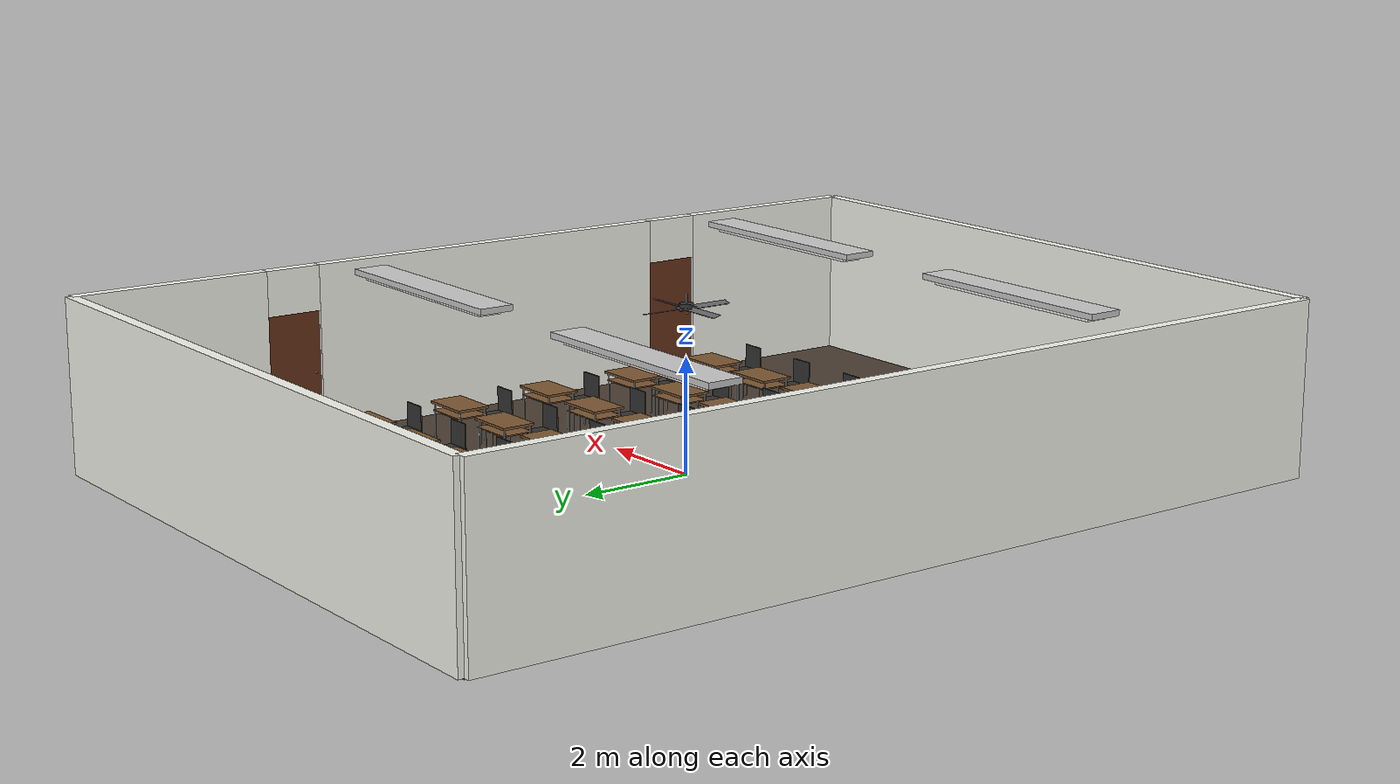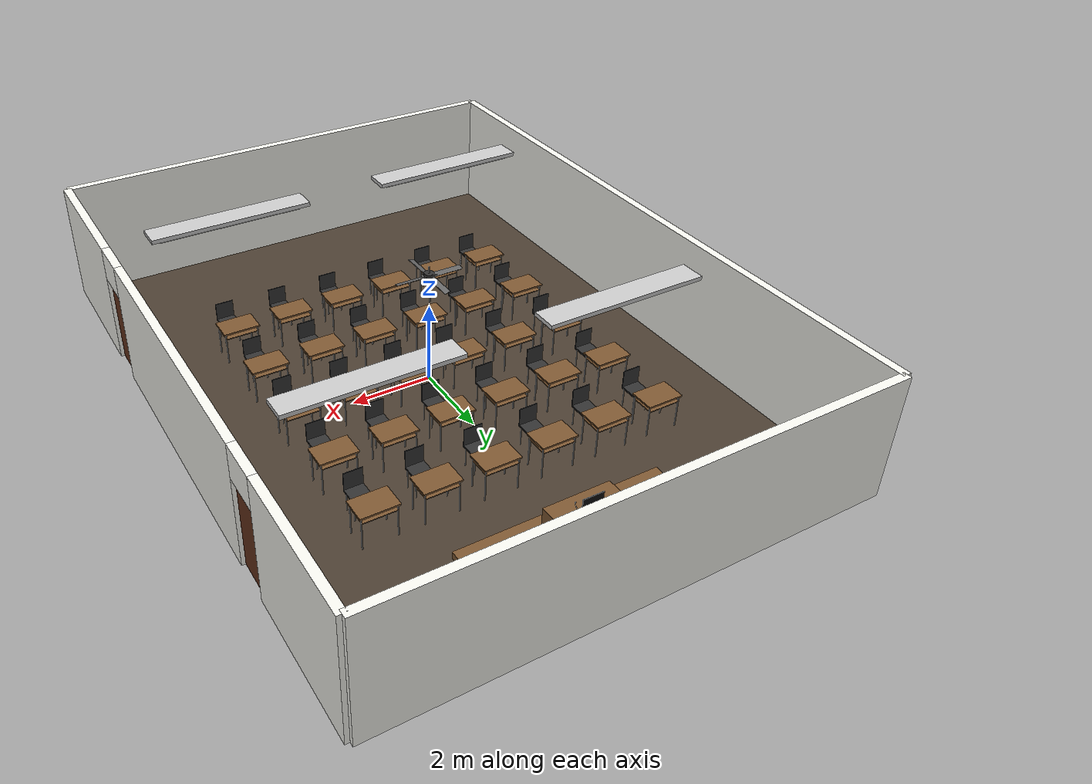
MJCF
<?xml version="1.0" ?>
<mujoco model="high_brightness_classroom">
  <compiler angle="degree" coordinate="local" inertiafromgeom="true"/>
  <asset>
    <texture name="tex_floor" type="2d" builtin="flat" rgb1="0.3 0.25 0.2" width="512" height="512"/>
    <material name="mat_floor" texture="tex_floor" texrepeat="10 10"/>
    <material name="mat_wood" rgba="0.5 0.35 0.2 1"/>
    <material name="mat_metal" rgba="0.8 0.8 0.8 1"/>
    <material name="mat_chair" rgba="0.2 0.2 0.2 1"/>
    <material name="mat_wall" rgba="0.98 0.98 0.95 1"/>
    <material name="mat_door" rgba="0.4 0.2 0.1 1"/>
    <material name="mat_blackboard" rgba="0.1 0.2 0.1 1"/>
    <material name="mat_tech" rgba="0.05 0.05 0.05 1"/>
    <material name="mat_led" rgba="1 1 1 1" emission="1"/>
  </asset>
  <worldbody>
    <body name="ceiling_fan" pos="0 0 2.8">
        <geom name="fan_rod" type="cylinder" size="0.015 0.1" pos="0 0 0.15" material="mat_metal"/>

        <geom name="fan_motor_housing" type="cylinder" size="0.12 0.05" pos="0 0 0.05" rgba="0.2 0.2 0.2 1"/>

        <body name="fan_rotating_part" pos="0 0 0.02">
            <joint name="fan_joint" type="hinge" axis="0 0 1" frictionloss="0.05" damping="0.1"/>

            <geom name="fan_hub" type="cylinder" size="0.06 0.02" material="mat_metal"/>

            <body name="blade_1" pos="0.08 0 0" euler="15 0 0">
                <geom name="blade_1_geom" type="box" size="0.5 0.07 0.005" pos="0.25 0 0" material="mat_metal" rgba="0.4 0.4 0.4 1"/>
            </body>

            <body name="blade_2" pos="-0.08 0 0" euler="-15 0 0">
                <geom name="blade_2_geom" type="box" size="0.5 0.07 0.005" pos="-0.25 0 0" material="mat_metal" rgba="0.4 0.4 0.4 1"/>
            </body>

            <body name="blade_3" pos="0 0.08 0" euler="0 15 0">
                <geom name="blade_3_geom" type="box" size="0.07 0.5 0.005" pos="0 0.25 0" material="mat_metal" rgba="0.4 0.4 0.4 1"/>
            </body>

            <body name="blade_4" pos="0 -0.08 0" euler="0 -15 0">
                <geom name="blade_4_geom" type="box" size="0.07 0.5 0.005" pos="0 -0.25 0" material="mat_metal" rgba="0.4 0.4 0.4 1"/>
            </body>
        </body>
    </body>
    <body name="light_1" pos="-3 3 3">
            <geom type="box" size="2 0.3 0.05" material="mat_metal" />
            <geom type="box" size="1.8 0.2 0.02" pos="0 0 -0.1" material="mat_led" />
            <light name="light_L1" pos="0 0 -0.5" dir="0 0 -1" diffuse="1.2 1.2 1.2"
                   cutoff="90" exponent="2" castshadow="true"/>
        </body>

        <body name="light_2" pos="3 3 3">
            <geom type="box" size="2 0.3 0.05" material="mat_metal" />
            <geom type="box" size="1.8 0.2 0.02" pos="0 0 -0.1" material="mat_led" />
            <light name="light_L2" pos="0 0 -0.5" dir="0 0 -1" diffuse="1.2 1.2 1.2"
                   cutoff="90" exponent="2" castshadow="true"/>
        </body>

        <body name="light_3" pos="3 -4.5 3">
            <geom type="box" size="2 0.3 0.05" material="mat_metal" />
            <geom type="box" size="1.8 0.2 0.02" pos="0 0 -0.1" material="mat_led" />
            <light name="light_L3" pos="0 0 -0.5" dir="0 0 -1" diffuse="1.2 1.2 1.2"
                   cutoff="90" exponent="2" castshadow="true"/>
        </body>

        <body name="light_4" pos="-3 -4.5 3">
            <geom type="box" size="2 0.3 0.05" material="mat_metal" />
            <geom type="box" size="1.8 0.2 0.02" pos="0 0 -0.1" material="mat_led" />
            <light name="light_L4" pos="0 0 -0.5" dir="0 0 -1" diffuse="1.2 1.2 1.2"
                   cutoff="90" exponent="2" castshadow="true"/>
        </body>
    <light pos="0 3 7" dir="0 0 -1" diffuse="1.2 1.2 1.2" specular="0.3 0.3 0.3"/>
    <light pos="0 -3 7" dir="0 0 -1" diffuse="1.2 1.2 1.2" specular="0.3 0.3 0.3"/>
    <geom name="floor" type="plane" size="6 8 0.1" material="mat_floor"/>
    <geom name="r_wall_front" type="box" size="0.1 1.75 1.5" pos="6 6.25 1.5" material="mat_wall"/>
    <geom name="r_wall_mid" type="box" size="0.1 3.5 1.5" pos="6 0 1.5" material="mat_wall"/>
    <geom name="r_wall_back" type="box" size="0.1 1.75 1.5" pos="6 -6.25 1.5" material="mat_wall"/>
    <geom name="r_wall_top1" type="box" size="0.1 0.5 0.4" pos="6 4.0 2.6" material="mat_wall"/>
    <geom name="r_wall_top2" type="box" size="0.1 0.5 0.4" pos="6 -4.0 2.6" material="mat_wall"/>
    <body name="door_1" pos="5.98 4.0 1.1">
      <geom type="box" size="0.03 0.495 1.1" material="mat_door"/>
      <geom type="cylinder" size="0.01 0.04" pos="-0.04 -0.4 0" quat="0.707 0 0.707 0" material="mat_metal"/>
    </body>
    <body name="door_2" pos="5.98 -4.0 1.1">
      <geom type="box" size="0.03 0.495 1.1" material="mat_door"/>
      <geom type="cylinder" size="0.01 0.04" pos="-0.04 -0.4 0" quat="0.707 0 0.707 0" material="mat_metal"/>
    </body>
    <geom name="wall_left" type="box" size="0.1 8 1.5" pos="-6 0 1.5" material="mat_wall"/>
    <geom name="wall_back" type="box" size="6 0.1 1.5" pos="0 -8 1.5" material="mat_wall"/>
    <geom name="wall_front" type="box" size="6 0.1 1.5" pos="0 8 1.5" material="mat_wall"/>
    <geom name="blackboard" type="box" size="3 0.02 0.8" pos="0 7.89 1.8" material="mat_blackboard"/>
    <geom name="podium" type="box" size="2.5 1.2 0.1" pos="0 6.5 0.05" material="mat_wood"/>
    <body pos="0 6.2 0.1">
      <geom type="box" size="0.8 0.4 0.4" pos="0 0 0.4" material="mat_wood"/>
      <geom type="box" size="0.25 0.01 0.18" pos="0 0.1 0.98" material="mat_tech"/>
      <geom type="capsule" size="0.005 0.1" pos="0.3 0 0.9" quat="0.92 0.38 0 0" material="mat_metal"/>
      <geom type="sphere" size="0.02" pos="0.3 -0.05 1.0" material="mat_tech"/>
    </body>
    <body name="student_0_0" pos="-3.5 4.0 0">
      <geom type="box" size="0.45 0.3 0.02" pos="0 0 0.82" material="mat_wood"/>
      <geom type="box" size="0.4 0.28 0.01" pos="0 0 0.68" material="mat_wood"/>
      <geom type="cylinder" size="0.015 0.4" pos="-0.4 -0.25 0.4" material="mat_metal"/>
      <geom type="cylinder" size="0.015 0.4" pos="0.4 -0.25 0.4" material="mat_metal"/>
      <geom type="cylinder" size="0.015 0.4" pos="-0.4 0.25 0.4" material="mat_metal"/>
      <geom type="cylinder" size="0.015 0.4" pos="0.4 0.25 0.4" material="mat_metal"/>
      <body pos="0 -0.7 0">
        <geom type="box" size="0.22 0.22 0.02" pos="0 0 0.52" material="mat_chair"/>
        <geom type="box" size="0.22 0.01 0.22" pos="0 -0.21 0.74" material="mat_chair"/>
        <geom type="cylinder" size="0.012 0.25" pos="-0.18 -0.18 0.25" material="mat_metal"/>
        <geom type="cylinder" size="0.012 0.25" pos="0.18 -0.18 0.25" material="mat_metal"/>
        <geom type="cylinder" size="0.012 0.25" pos="-0.18 0.18 0.25" material="mat_metal"/>
        <geom type="cylinder" size="0.012 0.25" pos="0.18 0.18 0.25" material="mat_metal"/>
      </body>
    </body>
    <body name="student_0_1" pos="-2.1 4.0 0">
      <geom type="box" size="0.45 0.3 0.02" pos="0 0 0.82" material="mat_wood"/>
      <geom type="box" size="0.4 0.28 0.01" pos="0 0 0.68" material="mat_wood"/>
      <geom type="cylinder" size="0.015 0.4" pos="-0.4 -0.25 0.4" material="mat_metal"/>
      <geom type="cylinder" size="0.015 0.4" pos="0.4 -0.25 0.4" material="mat_metal"/>
      <geom type="cylinder" size="0.015 0.4" pos="-0.4 0.25 0.4" material="mat_metal"/>
      <geom type="cylinder" size="0.015 0.4" pos="0.4 0.25 0.4" material="mat_metal"/>
      <body pos="0 -0.7 0">
        <geom type="box" size="0.22 0.22 0.02" pos="0 0 0.52" material="mat_chair"/>
        <geom type="box" size="0.22 0.01 0.22" pos="0 -0.21 0.74" material="mat_chair"/>
        <geom type="cylinder" size="0.012 0.25" pos="-0.18 -0.18 0.25" material="mat_metal"/>
        <geom type="cylinder" size="0.012 0.25" pos="0.18 -0.18 0.25" material="mat_metal"/>
        <geom type="cylinder" size="0.012 0.25" pos="-0.18 0.18 0.25" material="mat_metal"/>
        <geom type="cylinder" size="0.012 0.25" pos="0.18 0.18 0.25" material="mat_metal"/>
      </body>
    </body>
    <body name="student_0_2" pos="-0.7000000000000002 4.0 0">
      <geom type="box" size="0.45 0.3 0.02" pos="0 0 0.82" material="mat_wood"/>
      <geom type="box" size="0.4 0.28 0.01" pos="0 0 0.68" material="mat_wood"/>
      <geom type="cylinder" size="0.015 0.4" pos="-0.4 -0.25 0.4" material="mat_metal"/>
      <geom type="cylinder" size="0.015 0.4" pos="0.4 -0.25 0.4" material="mat_metal"/>
      <geom type="cylinder" size="0.015 0.4" pos="-0.4 0.25 0.4" material="mat_metal"/>
      <geom type="cylinder" size="0.015 0.4" pos="0.4 0.25 0.4" material="mat_metal"/>
      <body pos="0 -0.7 0">
        <geom type="box" size="0.22 0.22 0.02" pos="0 0 0.52" material="mat_chair"/>
        <geom type="box" size="0.22 0.01 0.22" pos="0 -0.21 0.74" material="mat_chair"/>
        <geom type="cylinder" size="0.012 0.25" pos="-0.18 -0.18 0.25" material="mat_metal"/>
        <geom type="cylinder" size="0.012 0.25" pos="0.18 -0.18 0.25" material="mat_metal"/>
        <geom type="cylinder" size="0.012 0.25" pos="-0.18 0.18 0.25" material="mat_metal"/>
        <geom type="cylinder" size="0.012 0.25" pos="0.18 0.18 0.25" material="mat_metal"/>
      </body>
    </body>
    <body name="student_0_3" pos="0.6999999999999993 4.0 0">
      <geom type="box" size="0.45 0.3 0.02" pos="0 0 0.82" material="mat_wood"/>
      <geom type="box" size="0.4 0.28 0.01" pos="0 0 0.68" material="mat_wood"/>
      <geom type="cylinder" size="0.015 0.4" pos="-0.4 -0.25 0.4" material="mat_metal"/>
      <geom type="cylinder" size="0.015 0.4" pos="0.4 -0.25 0.4" material="mat_metal"/>
      <geom type="cylinder" size="0.015 0.4" pos="-0.4 0.25 0.4" material="mat_metal"/>
      <geom type="cylinder" size="0.015 0.4" pos="0.4 0.25 0.4" material="mat_metal"/>
      <body pos="0 -0.7 0">
        <geom type="box" size="0.22 0.22 0.02" pos="0 0 0.52" material="mat_chair"/>
        <geom type="box" size="0.22 0.01 0.22" pos="0 -0.21 0.74" material="mat_chair"/>
        <geom type="cylinder" size="0.012 0.25" pos="-0.18 -0.18 0.25" material="mat_metal"/>
        <geom type="cylinder" size="0.012 0.25" pos="0.18 -0.18 0.25" material="mat_metal"/>
        <geom type="cylinder" size="0.012 0.25" pos="-0.18 0.18 0.25" material="mat_metal"/>
        <geom type="cylinder" size="0.012 0.25" pos="0.18 0.18 0.25" material="mat_metal"/>
      </body>
    </body>
    <body name="student_0_4" pos="2.0999999999999996 4.0 0">
      <geom type="box" size="0.45 0.3 0.02" pos="0 0 0.82" material="mat_wood"/>
      <geom type="box" size="0.4 0.28 0.01" pos="0 0 0.68" material="mat_wood"/>
      <geom type="cylinder" size="0.015 0.4" pos="-0.4 -0.25 0.4" material="mat_metal"/>
      <geom type="cylinder" size="0.015 0.4" pos="0.4 -0.25 0.4" material="mat_metal"/>
      <geom type="cylinder" size="0.015 0.4" pos="-0.4 0.25 0.4" material="mat_metal"/>
      <geom type="cylinder" size="0.015 0.4" pos="0.4 0.25 0.4" material="mat_metal"/>
      <body pos="0 -0.7 0">
        <geom type="box" size="0.22 0.22 0.02" pos="0 0 0.52" material="mat_chair"/>
        <geom type="box" size="0.22 0.01 0.22" pos="0 -0.21 0.74" material="mat_chair"/>
        <geom type="cylinder" size="0.012 0.25" pos="-0.18 -0.18 0.25" material="mat_metal"/>
        <geom type="cylinder" size="0.012 0.25" pos="0.18 -0.18 0.25" material="mat_metal"/>
        <geom type="cylinder" size="0.012 0.25" pos="-0.18 0.18 0.25" material="mat_metal"/>
        <geom type="cylinder" size="0.012 0.25" pos="0.18 0.18 0.25" material="mat_metal"/>
      </body>
    </body>
    <body name="student_0_5" pos="3.5 4.0 0">
      <geom type="box" size="0.45 0.3 0.02" pos="0 0 0.82" material="mat_wood"/>
      <geom type="box" size="0.4 0.28 0.01" pos="0 0 0.68" material="mat_wood"/>
      <geom type="cylinder" size="0.015 0.4" pos="-0.4 -0.25 0.4" material="mat_metal"/>
      <geom type="cylinder" size="0.015 0.4" pos="0.4 -0.25 0.4" material="mat_metal"/>
      <geom type="cylinder" size="0.015 0.4" pos="-0.4 0.25 0.4" material="mat_metal"/>
      <geom type="cylinder" size="0.015 0.4" pos="0.4 0.25 0.4" material="mat_metal"/>
      <body pos="0 -0.7 0">
        <geom type="box" size="0.22 0.22 0.02" pos="0 0 0.52" material="mat_chair"/>
        <geom type="box" size="0.22 0.01 0.22" pos="0 -0.21 0.74" material="mat_chair"/>
        <geom type="cylinder" size="0.012 0.25" pos="-0.18 -0.18 0.25" material="mat_metal"/>
        <geom type="cylinder" size="0.012 0.25" pos="0.18 -0.18 0.25" material="mat_metal"/>
        <geom type="cylinder" size="0.012 0.25" pos="-0.18 0.18 0.25" material="mat_metal"/>
        <geom type="cylinder" size="0.012 0.25" pos="0.18 0.18 0.25" material="mat_metal"/>
      </body>
    </body>
    <body name="student_1_0" pos="-3.5 2.2 0">
      <geom type="box" size="0.45 0.3 0.02" pos="0 0 0.82" material="mat_wood"/>
      <geom type="box" size="0.4 0.28 0.01" pos="0 0 0.68" material="mat_wood"/>
      <geom type="cylinder" size="0.015 0.4" pos="-0.4 -0.25 0.4" material="mat_metal"/>
      <geom type="cylinder" size="0.015 0.4" pos="0.4 -0.25 0.4" material="mat_metal"/>
      <geom type="cylinder" size="0.015 0.4" pos="-0.4 0.25 0.4" material="mat_metal"/>
      <geom type="cylinder" size="0.015 0.4" pos="0.4 0.25 0.4" material="mat_metal"/>
      <body pos="0 -0.7 0">
        <geom type="box" size="0.22 0.22 0.02" pos="0 0 0.52" material="mat_chair"/>
        <geom type="box" size="0.22 0.01 0.22" pos="0 -0.21 0.74" material="mat_chair"/>
        <geom type="cylinder" size="0.012 0.25" pos="-0.18 -0.18 0.25" material="mat_metal"/>
        <geom type="cylinder" size="0.012 0.25" pos="0.18 -0.18 0.25" material="mat_metal"/>
        <geom type="cylinder" size="0.012 0.25" pos="-0.18 0.18 0.25" material="mat_metal"/>
        <geom type="cylinder" size="0.012 0.25" pos="0.18 0.18 0.25" material="mat_metal"/>
      </body>
    </body>
    <body name="student_1_1" pos="-2.1 2.2 0">
      <geom type="box" size="0.45 0.3 0.02" pos="0 0 0.82" material="mat_wood"/>
      <geom type="box" size="0.4 0.28 0.01" pos="0 0 0.68" material="mat_wood"/>
      <geom type="cylinder" size="0.015 0.4" pos="-0.4 -0.25 0.4" material="mat_metal"/>
      <geom type="cylinder" size="0.015 0.4" pos="0.4 -0.25 0.4" material="mat_metal"/>
      <geom type="cylinder" size="0.015 0.4" pos="-0.4 0.25 0.4" material="mat_metal"/>
      <geom type="cylinder" size="0.015 0.4" pos="0.4 0.25 0.4" material="mat_metal"/>
      <body pos="0 -0.7 0">
        <geom type="box" size="0.22 0.22 0.02" pos="0 0 0.52" material="mat_chair"/>
        <geom type="box" size="0.22 0.01 0.22" pos="0 -0.21 0.74" material="mat_chair"/>
        <geom type="cylinder" size="0.012 0.25" pos="-0.18 -0.18 0.25" material="mat_metal"/>
        <geom type="cylinder" size="0.012 0.25" pos="0.18 -0.18 0.25" material="mat_metal"/>
        <geom type="cylinder" size="0.012 0.25" pos="-0.18 0.18 0.25" material="mat_metal"/>
        <geom type="cylinder" size="0.012 0.25" pos="0.18 0.18 0.25" material="mat_metal"/>
      </body>
    </body>
    <body name="student_1_2" pos="-0.7000000000000002 2.2 0">
      <geom type="box" size="0.45 0.3 0.02" pos="0 0 0.82" material="mat_wood"/>
      <geom type="box" size="0.4 0.28 0.01" pos="0 0 0.68" material="mat_wood"/>
      <geom type="cylinder" size="0.015 0.4" pos="-0.4 -0.25 0.4" material="mat_metal"/>
      <geom type="cylinder" size="0.015 0.4" pos="0.4 -0.25 0.4" material="mat_metal"/>
      <geom type="cylinder" size="0.015 0.4" pos="-0.4 0.25 0.4" material="mat_metal"/>
      <geom type="cylinder" size="0.015 0.4" pos="0.4 0.25 0.4" material="mat_metal"/>
      <body pos="0 -0.7 0">
        <geom type="box" size="0.22 0.22 0.02" pos="0 0 0.52" material="mat_chair"/>
        <geom type="box" size="0.22 0.01 0.22" pos="0 -0.21 0.74" material="mat_chair"/>
        <geom type="cylinder" size="0.012 0.25" pos="-0.18 -0.18 0.25" material="mat_metal"/>
        <geom type="cylinder" size="0.012 0.25" pos="0.18 -0.18 0.25" material="mat_metal"/>
        <geom type="cylinder" size="0.012 0.25" pos="-0.18 0.18 0.25" material="mat_metal"/>
        <geom type="cylinder" size="0.012 0.25" pos="0.18 0.18 0.25" material="mat_metal"/>
      </body>
    </body>
    <body name="student_1_3" pos="0.6999999999999993 2.2 0">
      <geom type="box" size="0.45 0.3 0.02" pos="0 0 0.82" material="mat_wood"/>
      <geom type="box" size="0.4 0.28 0.01" pos="0 0 0.68" material="mat_wood"/>
      <geom type="cylinder" size="0.015 0.4" pos="-0.4 -0.25 0.4" material="mat_metal"/>
      <geom type="cylinder" size="0.015 0.4" pos="0.4 -0.25 0.4" material="mat_metal"/>
      <geom type="cylinder" size="0.015 0.4" pos="-0.4 0.25 0.4" material="mat_metal"/>
      <geom type="cylinder" size="0.015 0.4" pos="0.4 0.25 0.4" material="mat_metal"/>
      <body pos="0 -0.7 0">
        <geom type="box" size="0.22 0.22 0.02" pos="0 0 0.52" material="mat_chair"/>
        <geom type="box" size="0.22 0.01 0.22" pos="0 -0.21 0.74" material="mat_chair"/>
        <geom type="cylinder" size="0.012 0.25" pos="-0.18 -0.18 0.25" material="mat_metal"/>
        <geom type="cylinder" size="0.012 0.25" pos="0.18 -0.18 0.25" material="mat_metal"/>
        <geom type="cylinder" size="0.012 0.25" pos="-0.18 0.18 0.25" material="mat_metal"/>
        <geom type="cylinder" size="0.012 0.25" pos="0.18 0.18 0.25" material="mat_metal"/>
      </body>
    </body>
    <body name="student_1_4" pos="2.0999999999999996 2.2 0">
      <geom type="box" size="0.45 0.3 0.02" pos="0 0 0.82" material="mat_wood"/>
      <geom type="box" size="0.4 0.28 0.01" pos="0 0 0.68" material="mat_wood"/>
      <geom type="cylinder" size="0.015 0.4" pos="-0.4 -0.25 0.4" material="mat_metal"/>
      <geom type="cylinder" size="0.015 0.4" pos="0.4 -0.25 0.4" material="mat_metal"/>
      <geom type="cylinder" size="0.015 0.4" pos="-0.4 0.25 0.4" material="mat_metal"/>
      <geom type="cylinder" size="0.015 0.4" pos="0.4 0.25 0.4" material="mat_metal"/>
      <body pos="0 -0.7 0">
        <geom type="box" size="0.22 0.22 0.02" pos="0 0 0.52" material="mat_chair"/>
        <geom type="box" size="0.22 0.01 0.22" pos="0 -0.21 0.74" material="mat_chair"/>
        <geom type="cylinder" size="0.012 0.25" pos="-0.18 -0.18 0.25" material="mat_metal"/>
        <geom type="cylinder" size="0.012 0.25" pos="0.18 -0.18 0.25" material="mat_metal"/>
        <geom type="cylinder" size="0.012 0.25" pos="-0.18 0.18 0.25" material="mat_metal"/>
        <geom type="cylinder" size="0.012 0.25" pos="0.18 0.18 0.25" material="mat_metal"/>
      </body>
    </body>
    <body name="student_1_5" pos="3.5 2.2 0">
      <geom type="box" size="0.45 0.3 0.02" pos="0 0 0.82" material="mat_wood"/>
      <geom type="box" size="0.4 0.28 0.01" pos="0 0 0.68" material="mat_wood"/>
      <geom type="cylinder" size="0.015 0.4" pos="-0.4 -0.25 0.4" material="mat_metal"/>
      <geom type="cylinder" size="0.015 0.4" pos="0.4 -0.25 0.4" material="mat_metal"/>
      <geom type="cylinder" size="0.015 0.4" pos="-0.4 0.25 0.4" material="mat_metal"/>
      <geom type="cylinder" size="0.015 0.4" pos="0.4 0.25 0.4" material="mat_metal"/>
      <body pos="0 -0.7 0">
        <geom type="box" size="0.22 0.22 0.02" pos="0 0 0.52" material="mat_chair"/>
        <geom type="box" size="0.22 0.01 0.22" pos="0 -0.21 0.74" material="mat_chair"/>
        <geom type="cylinder" size="0.012 0.25" pos="-0.18 -0.18 0.25" material="mat_metal"/>
        <geom type="cylinder" size="0.012 0.25" pos="0.18 -0.18 0.25" material="mat_metal"/>
        <geom type="cylinder" size="0.012 0.25" pos="-0.18 0.18 0.25" material="mat_metal"/>
        <geom type="cylinder" size="0.012 0.25" pos="0.18 0.18 0.25" material="mat_metal"/>
      </body>
    </body>
    <body name="student_2_0" pos="-3.5 0.3999999999999999 0">
      <geom type="box" size="0.45 0.3 0.02" pos="0 0 0.82" material="mat_wood"/>
      <geom type="box" size="0.4 0.28 0.01" pos="0 0 0.68" material="mat_wood"/>
      <geom type="cylinder" size="0.015 0.4" pos="-0.4 -0.25 0.4" material="mat_metal"/>
      <geom type="cylinder" size="0.015 0.4" pos="0.4 -0.25 0.4" material="mat_metal"/>
      <geom type="cylinder" size="0.015 0.4" pos="-0.4 0.25 0.4" material="mat_metal"/>
      <geom type="cylinder" size="0.015 0.4" pos="0.4 0.25 0.4" material="mat_metal"/>
      <body pos="0 -0.7 0">
        <geom type="box" size="0.22 0.22 0.02" pos="0 0 0.52" material="mat_chair"/>
        <geom type="box" size="0.22 0.01 0.22" pos="0 -0.21 0.74" material="mat_chair"/>
        <geom type="cylinder" size="0.012 0.25" pos="-0.18 -0.18 0.25" material="mat_metal"/>
        <geom type="cylinder" size="0.012 0.25" pos="0.18 -0.18 0.25" material="mat_metal"/>
        <geom type="cylinder" size="0.012 0.25" pos="-0.18 0.18 0.25" material="mat_metal"/>
        <geom type="cylinder" size="0.012 0.25" pos="0.18 0.18 0.25" material="mat_metal"/>
      </body>
    </body>
    <body name="student_2_1" pos="-2.1 0.3999999999999999 0">
      <geom type="box" size="0.45 0.3 0.02" pos="0 0 0.82" material="mat_wood"/>
      <geom type="box" size="0.4 0.28 0.01" pos="0 0 0.68" material="mat_wood"/>
      <geom type="cylinder" size="0.015 0.4" pos="-0.4 -0.25 0.4" material="mat_metal"/>
      <geom type="cylinder" size="0.015 0.4" pos="0.4 -0.25 0.4" material="mat_metal"/>
      <geom type="cylinder" size="0.015 0.4" pos="-0.4 0.25 0.4" material="mat_metal"/>
      <geom type="cylinder" size="0.015 0.4" pos="0.4 0.25 0.4" material="mat_metal"/>
      <body pos="0 -0.7 0">
        <geom type="box" size="0.22 0.22 0.02" pos="0 0 0.52" material="mat_chair"/>
        <geom type="box" size="0.22 0.01 0.22" pos="0 -0.21 0.74" material="mat_chair"/>
        <geom type="cylinder" size="0.012 0.25" pos="-0.18 -0.18 0.25" material="mat_metal"/>
        <geom type="cylinder" size="0.012 0.25" pos="0.18 -0.18 0.25" material="mat_metal"/>
        <geom type="cylinder" size="0.012 0.25" pos="-0.18 0.18 0.25" material="mat_metal"/>
        <geom type="cylinder" size="0.012 0.25" pos="0.18 0.18 0.25" material="mat_metal"/>
      </body>
    </body>
    <body name="student_2_2" pos="-0.7000000000000002 0.3999999999999999 0">
      <geom type="box" size="0.45 0.3 0.02" pos="0 0 0.82" material="mat_wood"/>
      <geom type="box" size="0.4 0.28 0.01" pos="0 0 0.68" material="mat_wood"/>
      <geom type="cylinder" size="0.015 0.4" pos="-0.4 -0.25 0.4" material="mat_metal"/>
      <geom type="cylinder" size="0.015 0.4" pos="0.4 -0.25 0.4" material="mat_metal"/>
      <geom type="cylinder" size="0.015 0.4" pos="-0.4 0.25 0.4" material="mat_metal"/>
      <geom type="cylinder" size="0.015 0.4" pos="0.4 0.25 0.4" material="mat_metal"/>
      <body pos="0 -0.7 0">
        <geom type="box" size="0.22 0.22 0.02" pos="0 0 0.52" material="mat_chair"/>
        <geom type="box" size="0.22 0.01 0.22" pos="0 -0.21 0.74" material="mat_chair"/>
        <geom type="cylinder" size="0.012 0.25" pos="-0.18 -0.18 0.25" material="mat_metal"/>
        <geom type="cylinder" size="0.012 0.25" pos="0.18 -0.18 0.25" material="mat_metal"/>
        <geom type="cylinder" size="0.012 0.25" pos="-0.18 0.18 0.25" material="mat_metal"/>
        <geom type="cylinder" size="0.012 0.25" pos="0.18 0.18 0.25" material="mat_metal"/>
      </body>
    </body>
    <body name="student_2_3" pos="0.6999999999999993 0.3999999999999999 0">
      <geom type="box" size="0.45 0.3 0.02" pos="0 0 0.82" material="mat_wood"/>
      <geom type="box" size="0.4 0.28 0.01" pos="0 0 0.68" material="mat_wood"/>
      <geom type="cylinder" size="0.015 0.4" pos="-0.4 -0.25 0.4" material="mat_metal"/>
      <geom type="cylinder" size="0.015 0.4" pos="0.4 -0.25 0.4" material="mat_metal"/>
      <geom type="cylinder" size="0.015 0.4" pos="-0.4 0.25 0.4" material="mat_metal"/>
      <geom type="cylinder" size="0.015 0.4" pos="0.4 0.25 0.4" material="mat_metal"/>
      <body pos="0 -0.7 0">
        <geom type="box" size="0.22 0.22 0.02" pos="0 0 0.52" material="mat_chair"/>
        <geom type="box" size="0.22 0.01 0.22" pos="0 -0.21 0.74" material="mat_chair"/>
        <geom type="cylinder" size="0.012 0.25" pos="-0.18 -0.18 0.25" material="mat_metal"/>
        <geom type="cylinder" size="0.012 0.25" pos="0.18 -0.18 0.25" material="mat_metal"/>
        <geom type="cylinder" size="0.012 0.25" pos="-0.18 0.18 0.25" material="mat_metal"/>
        <geom type="cylinder" size="0.012 0.25" pos="0.18 0.18 0.25" material="mat_metal"/>
      </body>
    </body>
    <body name="student_2_4" pos="2.0999999999999996 0.3999999999999999 0">
      <geom type="box" size="0.45 0.3 0.02" pos="0 0 0.82" material="mat_wood"/>
      <geom type="box" size="0.4 0.28 0.01" pos="0 0 0.68" material="mat_wood"/>
      <geom type="cylinder" size="0.015 0.4" pos="-0.4 -0.25 0.4" material="mat_metal"/>
      <geom type="cylinder" size="0.015 0.4" pos="0.4 -0.25 0.4" material="mat_metal"/>
      <geom type="cylinder" size="0.015 0.4" pos="-0.4 0.25 0.4" material="mat_metal"/>
      <geom type="cylinder" size="0.015 0.4" pos="0.4 0.25 0.4" material="mat_metal"/>
      <body pos="0 -0.7 0">
        <geom type="box" size="0.22 0.22 0.02" pos="0 0 0.52" material="mat_chair"/>
        <geom type="box" size="0.22 0.01 0.22" pos="0 -0.21 0.74" material="mat_chair"/>
        <geom type="cylinder" size="0.012 0.25" pos="-0.18 -0.18 0.25" material="mat_metal"/>
        <geom type="cylinder" size="0.012 0.25" pos="0.18 -0.18 0.25" material="mat_metal"/>
        <geom type="cylinder" size="0.012 0.25" pos="-0.18 0.18 0.25" material="mat_metal"/>
        <geom type="cylinder" size="0.012 0.25" pos="0.18 0.18 0.25" material="mat_metal"/>
      </body>
    </body>
    <body name="student_2_5" pos="3.5 0.3999999999999999 0">
      <geom type="box" size="0.45 0.3 0.02" pos="0 0 0.82" material="mat_wood"/>
      <geom type="box" size="0.4 0.28 0.01" pos="0 0 0.68" material="mat_wood"/>
      <geom type="cylinder" size="0.015 0.4" pos="-0.4 -0.25 0.4" material="mat_metal"/>
      <geom type="cylinder" size="0.015 0.4" pos="0.4 -0.25 0.4" material="mat_metal"/>
      <geom type="cylinder" size="0.015 0.4" pos="-0.4 0.25 0.4" material="mat_metal"/>
      <geom type="cylinder" size="0.015 0.4" pos="0.4 0.25 0.4" material="mat_metal"/>
      <body pos="0 -0.7 0">
        <geom type="box" size="0.22 0.22 0.02" pos="0 0 0.52" material="mat_chair"/>
        <geom type="box" size="0.22 0.01 0.22" pos="0 -0.21 0.74" material="mat_chair"/>
        <geom type="cylinder" size="0.012 0.25" pos="-0.18 -0.18 0.25" material="mat_metal"/>
        <geom type="cylinder" size="0.012 0.25" pos="0.18 -0.18 0.25" material="mat_metal"/>
        <geom type="cylinder" size="0.012 0.25" pos="-0.18 0.18 0.25" material="mat_metal"/>
        <geom type="cylinder" size="0.012 0.25" pos="0.18 0.18 0.25" material="mat_metal"/>
      </body>
    </body>
    <body name="student_3_0" pos="-3.5 -1.4000000000000004 0">
      <geom type="box" size="0.45 0.3 0.02" pos="0 0 0.82" material="mat_wood"/>
      <geom type="box" size="0.4 0.28 0.01" pos="0 0 0.68" material="mat_wood"/>
      <geom type="cylinder" size="0.015 0.4" pos="-0.4 -0.25 0.4" material="mat_metal"/>
      <geom type="cylinder" size="0.015 0.4" pos="0.4 -0.25 0.4" material="mat_metal"/>
      <geom type="cylinder" size="0.015 0.4" pos="-0.4 0.25 0.4" material="mat_metal"/>
      <geom type="cylinder" size="0.015 0.4" pos="0.4 0.25 0.4" material="mat_metal"/>
      <body pos="0 -0.7 0">
        <geom type="box" size="0.22 0.22 0.02" pos="0 0 0.52" material="mat_chair"/>
        <geom type="box" size="0.22 0.01 0.22" pos="0 -0.21 0.74" material="mat_chair"/>
        <geom type="cylinder" size="0.012 0.25" pos="-0.18 -0.18 0.25" material="mat_metal"/>
        <geom type="cylinder" size="0.012 0.25" pos="0.18 -0.18 0.25" material="mat_metal"/>
        <geom type="cylinder" size="0.012 0.25" pos="-0.18 0.18 0.25" material="mat_metal"/>
        <geom type="cylinder" size="0.012 0.25" pos="0.18 0.18 0.25" material="mat_metal"/>
      </body>
    </body>
    <body name="student_3_1" pos="-2.1 -1.4000000000000004 0">
      <geom type="box" size="0.45 0.3 0.02" pos="0 0 0.82" material="mat_wood"/>
      <geom type="box" size="0.4 0.28 0.01" pos="0 0 0.68" material="mat_wood"/>
      <geom type="cylinder" size="0.015 0.4" pos="-0.4 -0.25 0.4" material="mat_metal"/>
      <geom type="cylinder" size="0.015 0.4" pos="0.4 -0.25 0.4" material="mat_metal"/>
      <geom type="cylinder" size="0.015 0.4" pos="-0.4 0.25 0.4" material="mat_metal"/>
      <geom type="cylinder" size="0.015 0.4" pos="0.4 0.25 0.4" material="mat_metal"/>
      <body pos="0 -0.7 0">
        <geom type="box" size="0.22 0.22 0.02" pos="0 0 0.52" material="mat_chair"/>
        <geom type="box" size="0.22 0.01 0.22" pos="0 -0.21 0.74" material="mat_chair"/>
        <geom type="cylinder" size="0.012 0.25" pos="-0.18 -0.18 0.25" material="mat_metal"/>
        <geom type="cylinder" size="0.012 0.25" pos="0.18 -0.18 0.25" material="mat_metal"/>
        <geom type="cylinder" size="0.012 0.25" pos="-0.18 0.18 0.25" material="mat_metal"/>
        <geom type="cylinder" size="0.012 0.25" pos="0.18 0.18 0.25" material="mat_metal"/>
      </body>
    </body>
    <body name="student_3_2" pos="-0.7000000000000002 -1.4000000000000004 0">
      <geom type="box" size="0.45 0.3 0.02" pos="0 0 0.82" material="mat_wood"/>
      <geom type="box" size="0.4 0.28 0.01" pos="0 0 0.68" material="mat_wood"/>
      <geom type="cylinder" size="0.015 0.4" pos="-0.4 -0.25 0.4" material="mat_metal"/>
      <geom type="cylinder" size="0.015 0.4" pos="0.4 -0.25 0.4" material="mat_metal"/>
      <geom type="cylinder" size="0.015 0.4" pos="-0.4 0.25 0.4" material="mat_metal"/>
      <geom type="cylinder" size="0.015 0.4" pos="0.4 0.25 0.4" material="mat_metal"/>
      <body pos="0 -0.7 0">
        <geom type="box" size="0.22 0.22 0.02" pos="0 0 0.52" material="mat_chair"/>
        <geom type="box" size="0.22 0.01 0.22" pos="0 -0.21 0.74" material="mat_chair"/>
        <geom type="cylinder" size="0.012 0.25" pos="-0.18 -0.18 0.25" material="mat_metal"/>
        <geom type="cylinder" size="0.012 0.25" pos="0.18 -0.18 0.25" material="mat_metal"/>
        <geom type="cylinder" size="0.012 0.25" pos="-0.18 0.18 0.25" material="mat_metal"/>
        <geom type="cylinder" size="0.012 0.25" pos="0.18 0.18 0.25" material="mat_metal"/>
      </body>
    </body>
    <body name="student_3_3" pos="0.6999999999999993 -1.4000000000000004 0">
      <geom type="box" size="0.45 0.3 0.02" pos="0 0 0.82" material="mat_wood"/>
      <geom type="box" size="0.4 0.28 0.01" pos="0 0 0.68" material="mat_wood"/>
      <geom type="cylinder" size="0.015 0.4" pos="-0.4 -0.25 0.4" material="mat_metal"/>
      <geom type="cylinder" size="0.015 0.4" pos="0.4 -0.25 0.4" material="mat_metal"/>
      <geom type="cylinder" size="0.015 0.4" pos="-0.4 0.25 0.4" material="mat_metal"/>
      <geom type="cylinder" size="0.015 0.4" pos="0.4 0.25 0.4" material="mat_metal"/>
      <body pos="0 -0.7 0">
        <geom type="box" size="0.22 0.22 0.02" pos="0 0 0.52" material="mat_chair"/>
        <geom type="box" size="0.22 0.01 0.22" pos="0 -0.21 0.74" material="mat_chair"/>
        <geom type="cylinder" size="0.012 0.25" pos="-0.18 -0.18 0.25" material="mat_metal"/>
        <geom type="cylinder" size="0.012 0.25" pos="0.18 -0.18 0.25" material="mat_metal"/>
        <geom type="cylinder" size="0.012 0.25" pos="-0.18 0.18 0.25" material="mat_metal"/>
        <geom type="cylinder" size="0.012 0.25" pos="0.18 0.18 0.25" material="mat_metal"/>
      </body>
    </body>
    <body name="student_3_4" pos="2.0999999999999996 -1.4000000000000004 0">
      <geom type="box" size="0.45 0.3 0.02" pos="0 0 0.82" material="mat_wood"/>
      <geom type="box" size="0.4 0.28 0.01" pos="0 0 0.68" material="mat_wood"/>
      <geom type="cylinder" size="0.015 0.4" pos="-0.4 -0.25 0.4" material="mat_metal"/>
      <geom type="cylinder" size="0.015 0.4" pos="0.4 -0.25 0.4" material="mat_metal"/>
      <geom type="cylinder" size="0.015 0.4" pos="-0.4 0.25 0.4" material="mat_metal"/>
      <geom type="cylinder" size="0.015 0.4" pos="0.4 0.25 0.4" material="mat_metal"/>
      <body pos="0 -0.7 0">
        <geom type="box" size="0.22 0.22 0.02" pos="0 0 0.52" material="mat_chair"/>
        <geom type="box" size="0.22 0.01 0.22" pos="0 -0.21 0.74" material="mat_chair"/>
        <geom type="cylinder" size="0.012 0.25" pos="-0.18 -0.18 0.25" material="mat_metal"/>
        <geom type="cylinder" size="0.012 0.25" pos="0.18 -0.18 0.25" material="mat_metal"/>
        <geom type="cylinder" size="0.012 0.25" pos="-0.18 0.18 0.25" material="mat_metal"/>
        <geom type="cylinder" size="0.012 0.25" pos="0.18 0.18 0.25" material="mat_metal"/>
      </body>
    </body>
    <body name="student_3_5" pos="3.5 -1.4000000000000004 0">
      <geom type="box" size="0.45 0.3 0.02" pos="0 0 0.82" material="mat_wood"/>
      <geom type="box" size="0.4 0.28 0.01" pos="0 0 0.68" material="mat_wood"/>
      <geom type="cylinder" size="0.015 0.4" pos="-0.4 -0.25 0.4" material="mat_metal"/>
      <geom type="cylinder" size="0.015 0.4" pos="0.4 -0.25 0.4" material="mat_metal"/>
      <geom type="cylinder" size="0.015 0.4" pos="-0.4 0.25 0.4" material="mat_metal"/>
      <geom type="cylinder" size="0.015 0.4" pos="0.4 0.25 0.4" material="mat_metal"/>
      <body pos="0 -0.7 0">
        <geom type="box" size="0.22 0.22 0.02" pos="0 0 0.52" material="mat_chair"/>
        <geom type="box" size="0.22 0.01 0.22" pos="0 -0.21 0.74" material="mat_chair"/>
        <geom type="cylinder" size="0.012 0.25" pos="-0.18 -0.18 0.25" material="mat_metal"/>
        <geom type="cylinder" size="0.012 0.25" pos="0.18 -0.18 0.25" material="mat_metal"/>
        <geom type="cylinder" size="0.012 0.25" pos="-0.18 0.18 0.25" material="mat_metal"/>
        <geom type="cylinder" size="0.012 0.25" pos="0.18 0.18 0.25" material="mat_metal"/>
      </body>
    </body>
    <body name="student_4_0" pos="-3.5 -3.2 0">
      <geom type="box" size="0.45 0.3 0.02" pos="0 0 0.82" material="mat_wood"/>
      <geom type="box" size="0.4 0.28 0.01" pos="0 0 0.68" material="mat_wood"/>
      <geom type="cylinder" size="0.015 0.4" pos="-0.4 -0.25 0.4" material="mat_metal"/>
      <geom type="cylinder" size="0.015 0.4" pos="0.4 -0.25 0.4" material="mat_metal"/>
      <geom type="cylinder" size="0.015 0.4" pos="-0.4 0.25 0.4" material="mat_metal"/>
      <geom type="cylinder" size="0.015 0.4" pos="0.4 0.25 0.4" material="mat_metal"/>
      <body pos="0 -0.7 0">
        <geom type="box" size="0.22 0.22 0.02" pos="0 0 0.52" material="mat_chair"/>
        <geom type="box" size="0.22 0.01 0.22" pos="0 -0.21 0.74" material="mat_chair"/>
        <geom type="cylinder" size="0.012 0.25" pos="-0.18 -0.18 0.25" material="mat_metal"/>
        <geom type="cylinder" size="0.012 0.25" pos="0.18 -0.18 0.25" material="mat_metal"/>
        <geom type="cylinder" size="0.012 0.25" pos="-0.18 0.18 0.25" material="mat_metal"/>
        <geom type="cylinder" size="0.012 0.25" pos="0.18 0.18 0.25" material="mat_metal"/>
      </body>
    </body>
    <body name="student_4_1" pos="-2.1 -3.2 0">
      <geom type="box" size="0.45 0.3 0.02" pos="0 0 0.82" material="mat_wood"/>
      <geom type="box" size="0.4 0.28 0.01" pos="0 0 0.68" material="mat_wood"/>
      <geom type="cylinder" size="0.015 0.4" pos="-0.4 -0.25 0.4" material="mat_metal"/>
      <geom type="cylinder" size="0.015 0.4" pos="0.4 -0.25 0.4" material="mat_metal"/>
      <geom type="cylinder" size="0.015 0.4" pos="-0.4 0.25 0.4" material="mat_metal"/>
      <geom type="cylinder" size="0.015 0.4" pos="0.4 0.25 0.4" material="mat_metal"/>
      <body pos="0 -0.7 0">
        <geom type="box" size="0.22 0.22 0.02" pos="0 0 0.52" material="mat_chair"/>
        <geom type="box" size="0.22 0.01 0.22" pos="0 -0.21 0.74" material="mat_chair"/>
        <geom type="cylinder" size="0.012 0.25" pos="-0.18 -0.18 0.25" material="mat_metal"/>
        <geom type="cylinder" size="0.012 0.25" pos="0.18 -0.18 0.25" material="mat_metal"/>
        <geom type="cylinder" size="0.012 0.25" pos="-0.18 0.18 0.25" material="mat_metal"/>
        <geom type="cylinder" size="0.012 0.25" pos="0.18 0.18 0.25" material="mat_metal"/>
      </body>
    </body>
    <body name="student_4_2" pos="-0.7000000000000002 -3.2 0">
      <geom type="box" size="0.45 0.3 0.02" pos="0 0 0.82" material="mat_wood"/>
      <geom type="box" size="0.4 0.28 0.01" pos="0 0 0.68" material="mat_wood"/>
      <geom type="cylinder" size="0.015 0.4" pos="-0.4 -0.25 0.4" material="mat_metal"/>
      <geom type="cylinder" size="0.015 0.4" pos="0.4 -0.25 0.4" material="mat_metal"/>
      <geom type="cylinder" size="0.015 0.4" pos="-0.4 0.25 0.4" material="mat_metal"/>
      <geom type="cylinder" size="0.015 0.4" pos="0.4 0.25 0.4" material="mat_metal"/>
      <body pos="0 -0.7 0">
        <geom type="box" size="0.22 0.22 0.02" pos="0 0 0.52" material="mat_chair"/>
        <geom type="box" size="0.22 0.01 0.22" pos="0 -0.21 0.74" material="mat_chair"/>
        <geom type="cylinder" size="0.012 0.25" pos="-0.18 -0.18 0.25" material="mat_metal"/>
        <geom type="cylinder" size="0.012 0.25" pos="0.18 -0.18 0.25" material="mat_metal"/>
        <geom type="cylinder" size="0.012 0.25" pos="-0.18 0.18 0.25" material="mat_metal"/>
        <geom type="cylinder" size="0.012 0.25" pos="0.18 0.18 0.25" material="mat_metal"/>
      </body>
    </body>
    <body name="student_4_3" pos="0.6999999999999993 -3.2 0">
      <geom type="box" size="0.45 0.3 0.02" pos="0 0 0.82" material="mat_wood"/>
      <geom type="box" size="0.4 0.28 0.01" pos="0 0 0.68" material="mat_wood"/>
      <geom type="cylinder" size="0.015 0.4" pos="-0.4 -0.25 0.4" material="mat_metal"/>
      <geom type="cylinder" size="0.015 0.4" pos="0.4 -0.25 0.4" material="mat_metal"/>
      <geom type="cylinder" size="0.015 0.4" pos="-0.4 0.25 0.4" material="mat_metal"/>
      <geom type="cylinder" size="0.015 0.4" pos="0.4 0.25 0.4" material="mat_metal"/>
      <body pos="0 -0.7 0">
        <geom type="box" size="0.22 0.22 0.02" pos="0 0 0.52" material="mat_chair"/>
        <geom type="box" size="0.22 0.01 0.22" pos="0 -0.21 0.74" material="mat_chair"/>
        <geom type="cylinder" size="0.012 0.25" pos="-0.18 -0.18 0.25" material="mat_metal"/>
        <geom type="cylinder" size="0.012 0.25" pos="0.18 -0.18 0.25" material="mat_metal"/>
        <geom type="cylinder" size="0.012 0.25" pos="-0.18 0.18 0.25" material="mat_metal"/>
        <geom type="cylinder" size="0.012 0.25" pos="0.18 0.18 0.25" material="mat_metal"/>
      </body>
    </body>
    <body name="student_4_4" pos="2.0999999999999996 -3.2 0">
      <geom type="box" size="0.45 0.3 0.02" pos="0 0 0.82" material="mat_wood"/>
      <geom type="box" size="0.4 0.28 0.01" pos="0 0 0.68" material="mat_wood"/>
      <geom type="cylinder" size="0.015 0.4" pos="-0.4 -0.25 0.4" material="mat_metal"/>
      <geom type="cylinder" size="0.015 0.4" pos="0.4 -0.25 0.4" material="mat_metal"/>
      <geom type="cylinder" size="0.015 0.4" pos="-0.4 0.25 0.4" material="mat_metal"/>
      <geom type="cylinder" size="0.015 0.4" pos="0.4 0.25 0.4" material="mat_metal"/>
      <body pos="0 -0.7 0">
        <geom type="box" size="0.22 0.22 0.02" pos="0 0 0.52" material="mat_chair"/>
        <geom type="box" size="0.22 0.01 0.22" pos="0 -0.21 0.74" material="mat_chair"/>
        <geom type="cylinder" size="0.012 0.25" pos="-0.18 -0.18 0.25" material="mat_metal"/>
        <geom type="cylinder" size="0.012 0.25" pos="0.18 -0.18 0.25" material="mat_metal"/>
        <geom type="cylinder" size="0.012 0.25" pos="-0.18 0.18 0.25" material="mat_metal"/>
        <geom type="cylinder" size="0.012 0.25" pos="0.18 0.18 0.25" material="mat_metal"/>
      </body>
    </body>
    <body name="student_4_5" pos="3.5 -3.2 0">
      <geom type="box" size="0.45 0.3 0.02" pos="0 0 0.82" material="mat_wood"/>
      <geom type="box" size="0.4 0.28 0.01" pos="0 0 0.68" material="mat_wood"/>
      <geom type="cylinder" size="0.015 0.4" pos="-0.4 -0.25 0.4" material="mat_metal"/>
      <geom type="cylinder" size="0.015 0.4" pos="0.4 -0.25 0.4" material="mat_metal"/>
      <geom type="cylinder" size="0.015 0.4" pos="-0.4 0.25 0.4" material="mat_metal"/>
      <geom type="cylinder" size="0.015 0.4" pos="0.4 0.25 0.4" material="mat_metal"/>
      <body pos="0 -0.7 0">
        <geom type="box" size="0.22 0.22 0.02" pos="0 0 0.52" material="mat_chair"/>
        <geom type="box" size="0.22 0.01 0.22" pos="0 -0.21 0.74" material="mat_chair"/>
        <geom type="cylinder" size="0.012 0.25" pos="-0.18 -0.18 0.25" material="mat_metal"/>
        <geom type="cylinder" size="0.012 0.25" pos="0.18 -0.18 0.25" material="mat_metal"/>
        <geom type="cylinder" size="0.012 0.25" pos="-0.18 0.18 0.25" material="mat_metal"/>
        <geom type="cylinder" size="0.012 0.25" pos="0.18 0.18 0.25" material="mat_metal"/>
      </body>
    </body>
  </worldbody>
</mujoco>
